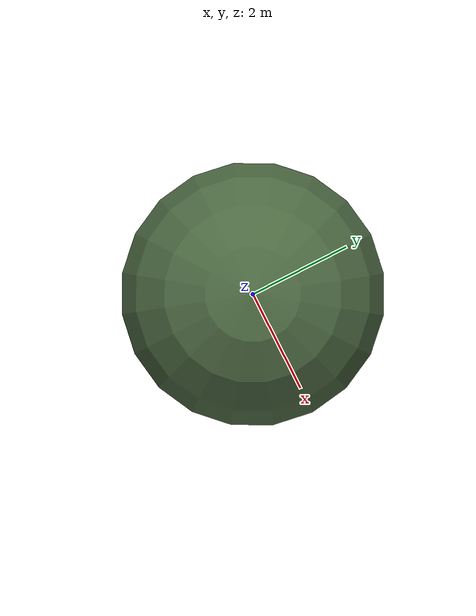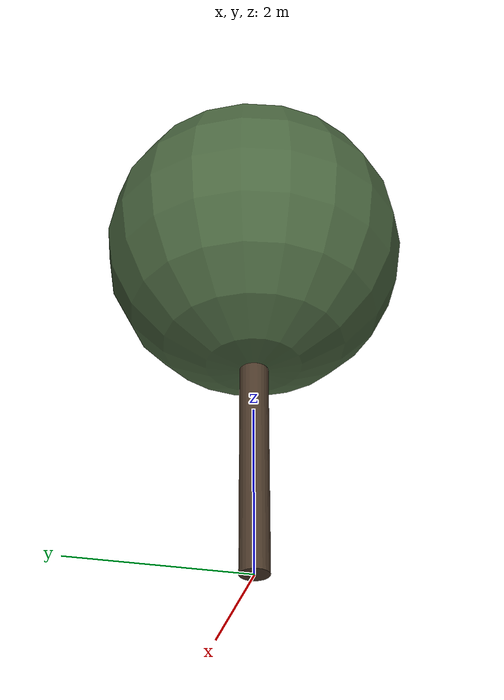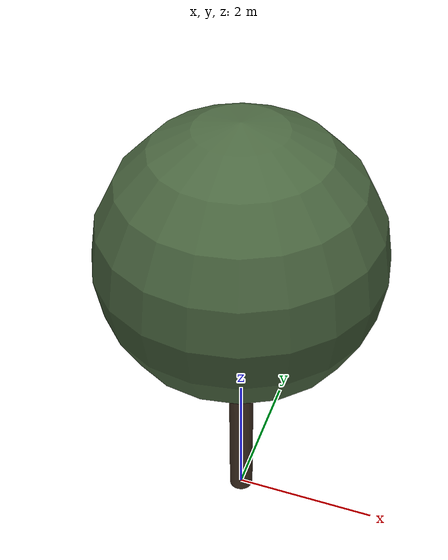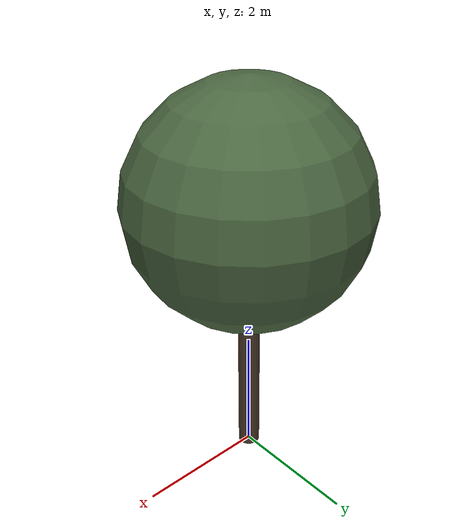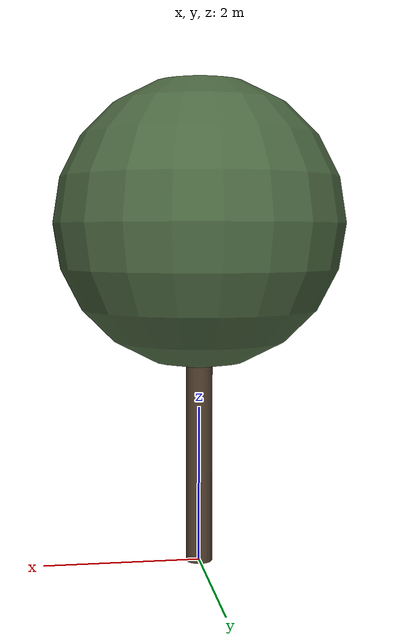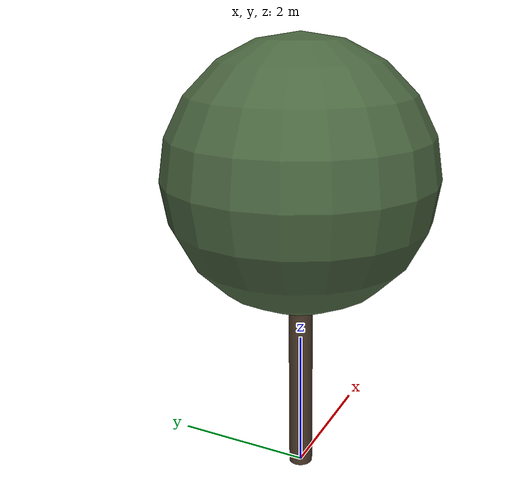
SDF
<?xml version="1.0" ?>
<sdf version="1.10">
  <model name="chene_vert_09">
    <static>true</static>

    <!-- Tronc -->
    <link name="trunk">
      <pose>0 0 1.8992185218375714 0 0 0</pose>
      <visual name="trunk_visual">
        <geometry>
          <cylinder>
            <radius>0.1694624878186785</radius>
            <length>3.798437043675143</length>
          </cylinder>
        </geometry>
        <material>
          <ambient>0.29 0.22 0.16 1</ambient>
          <diffuse>0.29 0.22 0.16 1</diffuse>
          <specular>0.1 0.1 0.1 1</specular>
        </material>
      </visual>
      <collision name="trunk_collision">
        <geometry>
          <cylinder>
            <radius>0.1694624878186785</radius>
            <length>3.798437043675143</length>
          </cylinder>
        </geometry>
      </collision>
    </link>

    <!-- Feuillage -->
    <link name="crown">
      <pose>0 0 4.349997003779352 0 0 0</pose>
      <visual name="crown_visual">
        <geometry>
          <sphere>
              <radius>1.8385332003473627</radius>
            </sphere>
        </geometry>
        <material>
          <ambient>0.29 0.40 0.25 1</ambient>
          <diffuse>0.29 0.40 0.25 1</diffuse>
          <specular>0.1 0.1 0.1 1</specular>
        </material>
      </visual>
      <collision name="crown_collision">
        <geometry>
          <sphere>
            <radius>1.4708265602778903</radius>
          </sphere>
        </geometry>
      </collision>
    </link>

    <!-- Joint tronc-feuillage -->
    <joint name="trunk_crown_joint" type="fixed">
      <parent>trunk</parent>
      <child>crown</child>
    </joint>

  </model>
</sdf>
